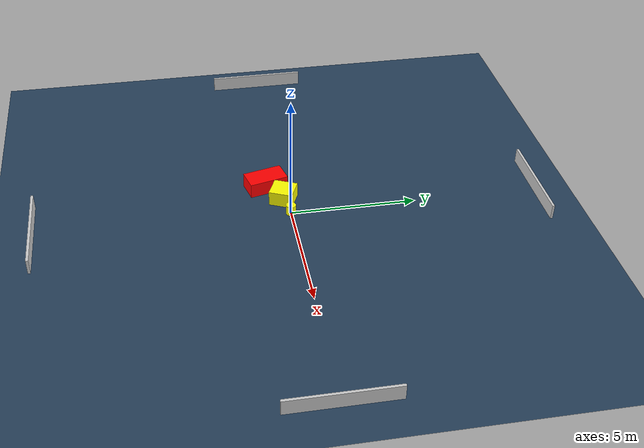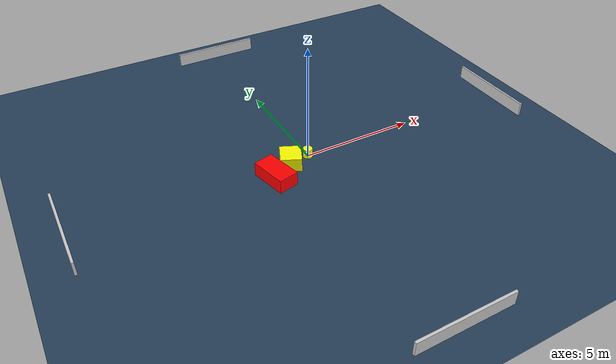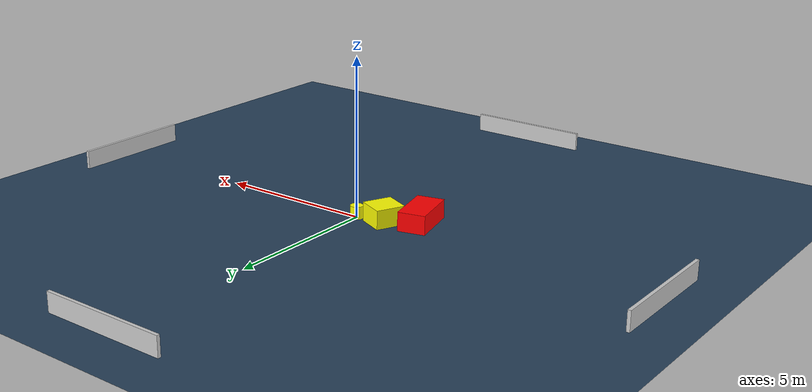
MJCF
<?xml version="1.0" ?>
<mujoco model="generated_environment">
  <option timestep="0.01" integrator="RK4" cone="elliptic"/>
  <default>
    <geom density="1"/>
  </default>
  <asset>
    <texture builtin="gradient" height="3072" name="skybox" rgb1="0.3 0.5 0.7" rgb2="0 0 0" type="skybox" width="512"/>
    <texture builtin="checker" height="300" name="groundplane" rgb1="0.2 0.3 0.4" rgb2="0.1 0.2 0.3" type="2d" width="300"/>
    <material name="groundplane" reflectance="0.2" texrepeat="5 5" texture="groundplane"/>
  </asset>
  <worldbody>
    <light dir="0 0 -1" directional="true" pos="0 0 1.5"/>
    <geom condim="3" friction="0.5 0.005 0.001" material="groundplane" name="floor" pos="0 0 0" size="0 0 0.05" type="plane"/>
    <body name="walls">
      <geom name="wall_1" condim="4" pos="-10.0 0.0 0.3" rgba="0.800000011920929 0.800000011920929 0.800000011920929 1.0" size="0.05 2.0 0.3" type="box"/>
      <geom name="wall_2" condim="4" pos="10.0 0.0 0.3" rgba="0.800000011920929 0.800000011920929 0.800000011920929 1.0" size="0.05 2.0 0.3" type="box"/>
      <geom name="wall_3" condim="4" pos="0.0 -10.0 0.3" rgba="0.800000011920929 0.800000011920929 0.800000011920929 1.0" size="2.0 0.05 0.3" type="box"/>
      <geom name="wall_4" condim="4" pos="0.0 10.0 0.3" rgba="0.800000011920929 0.800000011920929 0.800000011920929 1.0" size="2.0 0.05 0.3" type="box"/>
    </body>
    <body name="robot">
      <joint name="joint_x" type="slide" pos="0 0 0" axis="1 0 0"/>
      <joint name="joint_y" type="slide" pos="0 0 0" axis="0 1 0"/>
      <geom name="robot" type="cylinder" pos="0.0 0.0 0.2" size="0.2 0.2 0.0" mass="5.0" friction="1.0 0.005 0.0001" condim="4" rgba="1.0 1.0 0.0 1.0"/>
    </body>
    <body name="obstacle_1_movable">
      <geom name="obstacle_1_movable" condim="4" pos="-0.8941213230038177 -0.16352278124965514 0.3" euler="0 0 245.77251832060907" friction="0.0 0.005 0.001" rgba="1.0 1.0 0.0 1.0" size="0.4709689813035008 0.44303204947379365 0.3" type="box" mass="0.1"/>
      <joint type="free"/>
    </body>
    <body name="obstacle_2_static">
      <geom name="obstacle_2_static" condim="4" pos="-1.8589229332670518 -0.7367338479817439 0.3" euler="0 0 283.58858722807855" friction="0.0 0.005 0.001" rgba="1.0 0.0 0.0 1.0" size="0.7927332578496475 0.4336274288898786 0.3" type="box"/>
    </body>
  </worldbody>
  <actuator>
    <motor name="actuator_x" joint="joint_x" gear="1" ctrlrange="-1 1"/>
    <motor name="actuator_y" joint="joint_y" gear="1" ctrlrange="-1 1"/>
  </actuator>
</mujoco>
